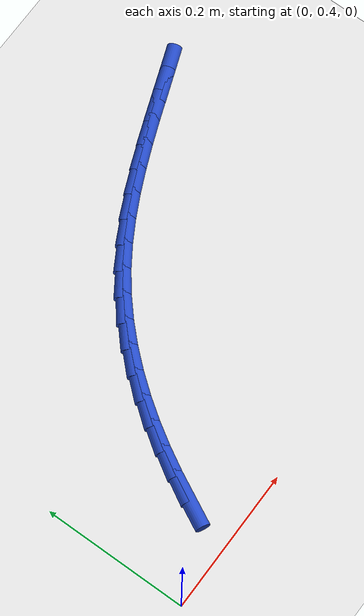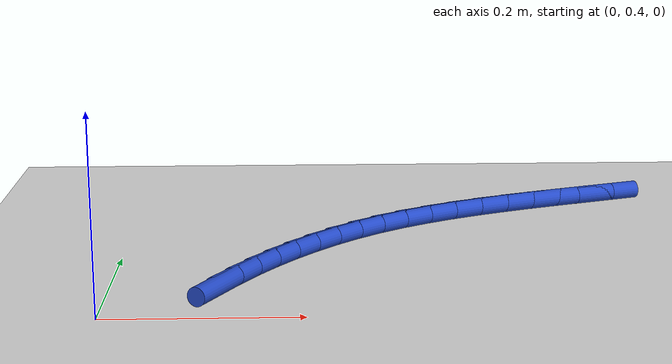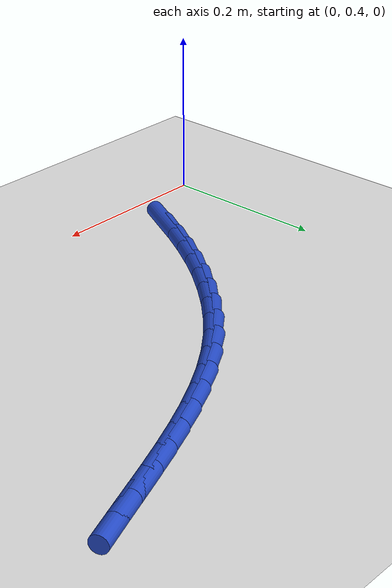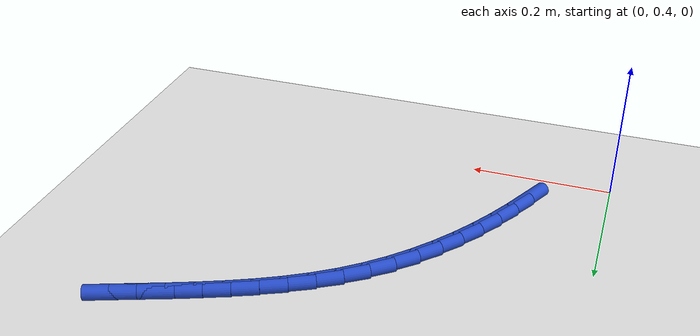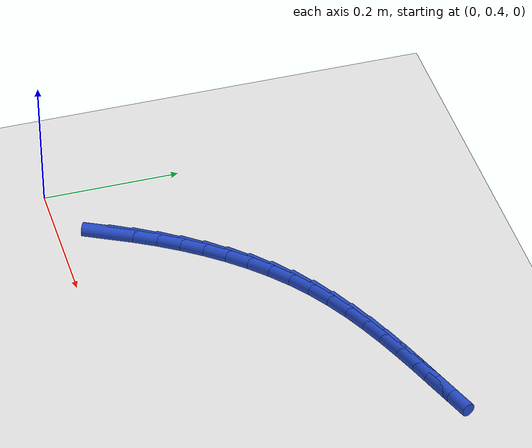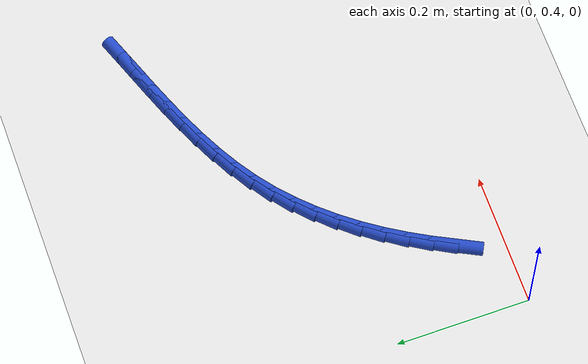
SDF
<sdf version="1.6">
 <world name="default">
  <model name="ground_plane">
   <static>1</static>
   <link name="link">
    <collision name="collision">
     <geometry><plane><normal>0 0 1</normal><size>100 100</size></plane></geometry>
     <surface><friction><ode><mu>100</mu><mu2>50</mu2></ode></friction></surface>
    </collision>
    <visual name="visual">
     <cast_shadows>0</cast_shadows>
     <geometry><plane><normal>0 0 1</normal><size>100 100</size></plane></geometry>
     <material>
      <script><uri>file://media/materials/scripts/gazebo.material</uri><name>Gazebo/WhiteGlow</name></script>
     </material>
    </visual>
   </link>
  </model>
  <model name="line">
   <link name="link_14">
    <pose>0.110119072257727 0.4703335751510758 0.01 0 1.57 1.1001911912436766</pose>
    <collision name="collision">
     <geometry><cylinder><radius>0.01</radius><length>0.08</length></cylinder></geometry>
    </collision>
    <visual name="visual">
     <material>
      <script><name>Gazebo/Blue</name><uri>file://media/materials/scripts/gazebo.material</uri></script>
     </material>
     <geometry><cylinder><radius>0.01</radius><length>0.08</length></cylinder></geometry>
    </visual>
   </link>
   <link name="link_15">
    <pose>0.126138738553061 0.5018232609689038 0.01 0 1.57 1.057375467120987</pose>
    <collision name="collision">
     <geometry><cylinder><radius>0.01</radius><length>0.08</length></cylinder></geometry>
    </collision>
    <visual name="visual">
     <material>
      <script><name>Gazebo/Blue</name><uri>file://media/materials/scripts/gazebo.material</uri></script>
     </material>
     <geometry><cylinder><radius>0.01</radius><length>0.08</length></cylinder></geometry>
    </visual>
   </link>
   <link name="link_16">
    <pose>0.14341912141464944 0.5324699249212762 0.01 0 1.57 1.0111205116031132</pose>
    <collision name="collision">
     <geometry><cylinder><radius>0.01</radius><length>0.08</length></cylinder></geometry>
    </collision>
    <visual name="visual">
     <material>
      <script><name>Gazebo/Blue</name><uri>file://media/materials/scripts/gazebo.material</uri></script>
     </material>
     <geometry><cylinder><radius>0.01</radius><length>0.08</length></cylinder></geometry>
    </visual>
   </link>
   <link name="link_17">
    <pose>0.16200332050542818 0.5621335449396415 0.01 0 1.57 0.9611828644418535</pose>
    <collision name="collision">
     <geometry><cylinder><radius>0.01</radius><length>0.08</length></cylinder></geometry>
    </collision>
    <visual name="visual">
     <material>
      <script><name>Gazebo/Blue</name><uri>file://media/materials/scripts/gazebo.material</uri></script>
     </material>
     <geometry><cylinder><radius>0.01</radius><length>0.08</length></cylinder></geometry>
    </visual>
   </link>
   <link name="link_18">
    <pose>0.1819344354883331 0.5906740989554479 0.01 0 1.57 0.9073518326601895</pose>
    <collision name="collision">
     <geometry><cylinder><radius>0.01</radius><length>0.08</length></cylinder></geometry>
    </collision>
    <visual name="visual">
     <material>
      <script><name>Gazebo/Blue</name><uri>file://media/materials/scripts/gazebo.material</uri></script>
     </material>
     <geometry><cylinder><radius>0.01</radius><length>0.08</length></cylinder></geometry>
    </visual>
   </link>
   <link name="link_19">
    <pose>0.2032555660263001 0.6179515649001439 0.01 0 1.57 0.8494723688109885</pose>
    <collision name="collision">
     <geometry><cylinder><radius>0.01</radius><length>0.08</length></cylinder></geometry>
    </collision>
    <visual name="visual">
     <material>
      <script><name>Gazebo/Blue</name><uri>file://media/materials/scripts/gazebo.material</uri></script>
     </material>
     <geometry><cylinder><radius>0.01</radius><length>0.08</length></cylinder></geometry>
    </visual>
   </link>
   <link name="link_20">
    <pose>0.22600981178226498 0.643825920705178 0.01 0 1.57 0.7874731082207895</pose>
    <collision name="collision">
     <geometry><cylinder><radius>0.01</radius><length>0.08</length></cylinder></geometry>
    </collision>
    <visual name="visual">
     <material>
      <script><name>Gazebo/Blue</name><uri>file://media/materials/scripts/gazebo.material</uri></script>
     </material>
     <geometry><cylinder><radius>0.01</radius><length>0.08</length></cylinder></geometry>
    </visual>
   </link>
   <link name="link_21">
    <pose>0.2502402724191636 0.6681571443019982 0.01 0 1.57 0.7213980028088065</pose>
    <collision name="collision">
     <geometry><cylinder><radius>0.01</radius><length>0.08</length></cylinder></geometry>
    </collision>
    <visual name="visual">
     <material>
      <script><name>Gazebo/Blue</name><uri>file://media/materials/scripts/gazebo.material</uri></script>
     </material>
     <geometry><cylinder><radius>0.01</radius><length>0.08</length></cylinder></geometry>
    </visual>
   </link>
   <link name="link_22">
    <pose>0.2759900475999318 0.6908052136220529 0.01 0 1.57 0.6514381550738182</pose>
    <collision name="collision">
     <geometry><cylinder><radius>0.01</radius><length>0.08</length></cylinder></geometry>
    </collision>
    <visual name="visual">
     <material>
      <script><name>Gazebo/Blue</name><uri>file://media/materials/scripts/gazebo.material</uri></script>
     </material>
     <geometry><cylinder><radius>0.01</radius><length>0.08</length></cylinder></geometry>
    </visual>
   </link>
   <link name="link_23">
    <pose>0.30330223673515827 0.7116301068440639 0.01 0 1.57 0.5804944052638015</pose>
    <collision name="collision">
     <geometry><cylinder><radius>0.01</radius><length>0.08</length></cylinder></geometry>
    </collision>
    <visual name="visual">
     <material>
      <script><name>Gazebo/Blue</name><uri>file://media/materials/scripts/gazebo.material</uri></script>
     </material>
     <geometry><cylinder><radius>0.01</radius><length>0.08</length></cylinder></geometry>
    </visual>
   </link>
   <link name="link_24">
    <pose>0.33215592537552213 0.7305545286635012 0.01 0 1.57 0.5183572075855268</pose>
    <collision name="collision">
     <geometry><cylinder><radius>0.01</radius><length>0.08</length></cylinder></geometry>
    </collision>
    <visual name="visual">
     <material>
      <script><name>Gazebo/Blue</name><uri>file://media/materials/scripts/gazebo.material</uri></script>
     </material>
     <geometry><cylinder><radius>0.01</radius><length>0.08</length></cylinder></geometry>
    </visual>
   </link>
   <link name="link_25">
    <pose>0.3622861773466556 0.7477402981308431 0.01 0 1.57 0.46683474233749916</pose>
    <collision name="collision">
     <geometry><cylinder><radius>0.01</radius><length>0.08</length></cylinder></geometry>
    </collision>
    <visual name="visual">
     <material>
      <script><name>Gazebo/Blue</name><uri>file://media/materials/scripts/gazebo.material</uri></script>
     </material>
     <geometry><cylinder><radius>0.01</radius><length>0.08</length></cylinder></geometry>
    </visual>
   </link>
   <link name="link_26">
    <pose>0.3933699193604577 0.7634062022507494 0.01 0 1.57 0.42530175828818706</pose>
    <collision name="collision">
     <geometry><cylinder><radius>0.01</radius><length>0.08</length></cylinder></geometry>
    </collision>
    <visual name="visual">
     <material>
      <script><name>Gazebo/Blue</name><uri>file://media/materials/scripts/gazebo.material</uri></script>
     </material>
     <geometry><cylinder><radius>0.01</radius><length>0.08</length></cylinder></geometry>
    </visual>
   </link>
   <link name="link_27">
    <pose>0.42508407812882837 0.7777710280278807 0.01 0 1.57 0.39319994170133654</pose>
    <collision name="collision">
     <geometry><cylinder><radius>0.01</radius><length>0.08</length></cylinder></geometry>
    </collision>
    <visual name="visual">
     <material>
      <script><name>Gazebo/Blue</name><uri>file://media/materials/scripts/gazebo.material</uri></script>
     </material>
     <geometry><cylinder><radius>0.01</radius><length>0.08</length></cylinder></geometry>
    </visual>
   </link>
   <link name="link_28">
    <pose>0.45710558036366666 0.7910535624668967 0.01 0 1.57 0.37014040339746834</pose>
    <collision name="collision">
     <geometry><cylinder><radius>0.01</radius><length>0.08</length></cylinder></geometry>
    </collision>
    <visual name="visual">
     <material>
      <script><name>Gazebo/Blue</name><uri>file://media/materials/scripts/gazebo.material</uri></script>
     </material>
     <geometry><cylinder><radius>0.01</radius><length>0.08</length></cylinder></geometry>
    </visual>
   </link>
   <link name="link_29">
    <pose>0.48911135277687207 0.8034725925724578 0.01 0 1.57 0.3559770471485359</pose>
    <collision name="collision">
     <geometry><cylinder><radius>0.01</radius><length>0.08</length></cylinder></geometry>
    </collision>
    <visual name="visual">
     <material>
      <script><name>Gazebo/Blue</name><uri>file://media/materials/scripts/gazebo.material</uri></script>
     </material>
     <geometry><cylinder><radius>0.01</radius><length>0.08</length></cylinder></geometry>
    </visual>
   </link>
   <link name="link_30">
    <pose>0.5207783220803441 0.8152469053492242 0.01 0 1.57 0.3508688354635092</pose>
    <collision name="collision">
     <geometry><cylinder><radius>0.01</radius><length>0.08</length></cylinder></geometry>
    </collision>
    <visual name="visual">
     <material>
      <script><name>Gazebo/Blue</name><uri>file://media/materials/scripts/gazebo.material</uri></script>
     </material>
     <geometry><cylinder><radius>0.01</radius><length>0.08</length></cylinder></geometry>
    </visual>
   </link>
   <link name="link_31">
    <pose>0.551787324866967 0.8265966162490356 0.01 0 1.57 0.3551749154991921</pose>
    <collision name="collision">
     <geometry><cylinder><radius>0.01</radius><length>0.08</length></cylinder></geometry>
    </collision>
    <visual name="visual">
     <material>
      <script><name>Gazebo/Blue</name><uri>file://media/materials/scripts/gazebo.material</uri></script>
     </material>
     <geometry><cylinder><radius>0.01</radius><length>0.08</length></cylinder></geometry>
    </visual>
   </link>
  </model>
 </world>
</sdf>
